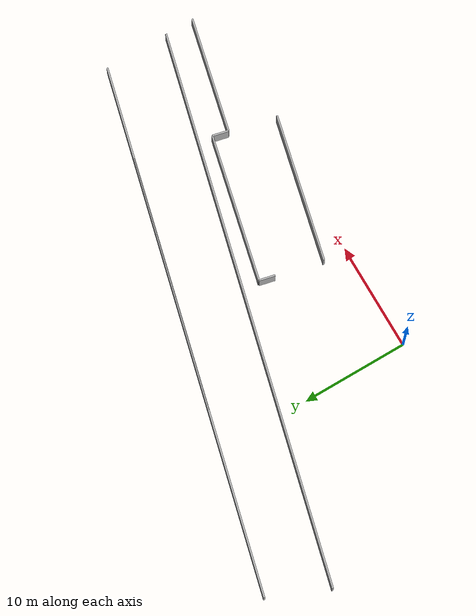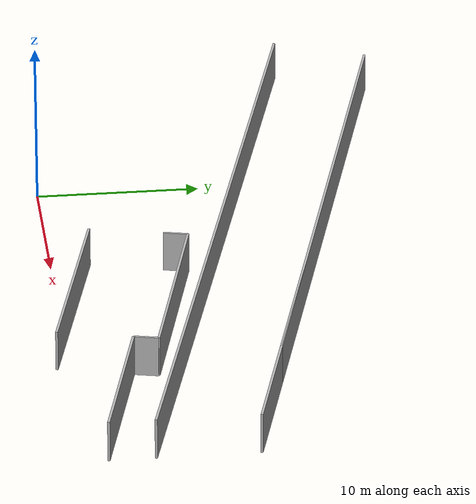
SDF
<?xml version="1.0" ?>
<sdf version="1.6">
  <model name="sps_1006">
    <pose frame="">0 0 0 0 -0 0</pose>
    <static>1</static>
    <self_collide>0</self_collide>
    <allow_auto_disable>0</allow_auto_disable>
    <link name="Wall104">
      <kinematic>0</kinematic>
      <gravity>1</gravity>
      <self_collide>0</self_collide>
      <collision name="collision">
        <geometry>
          <box>
            <size>51.5639 0.15 2.5</size>
          </box>
        </geometry>
        <pose frame="">0 0 0 0 -0 0</pose>
      </collision>
      <visual name="visual">
        <geometry>
          <box>
            <size>51.5639 0.15 2.5</size>
          </box>
        </geometry>
        <pose frame="">0 0 0 0 -0 0</pose>
        <cast_shadows>1</cast_shadows>
        <transparency>0.0</transparency>
      </visual>
      <pose frame="">9.46944 10.2681 1.25 0 0 -0.246916</pose>
    </link>
    <link name="Wall181">
      <kinematic>0</kinematic>
      <gravity>1</gravity>
      <self_collide>0</self_collide>
      <collision name="collision">
        <geometry>
          <box>
            <size>32.001 0.15 2.5</size>
          </box>
        </geometry>
        <pose frame="">0 0 0 0 -0 0</pose>
      </collision>
      <visual name="visual">
        <geometry>
          <box>
            <size>32.001 0.15 2.5</size>
          </box>
        </geometry>
        <pose frame="">0 0 0 0 -0 0</pose>
        <cast_shadows>1</cast_shadows>
        <transparency>0.0</transparency>
      </visual>
      <pose frame="">18.9592 13.9626 1.25 0 -0 2.89341</pose>
    </link>
    <link name="Wall275">
      <kinematic>0</kinematic>
      <gravity>1</gravity>
      <self_collide>0</self_collide>
      <collision name="collision">
        <geometry>
          <box>
            <size>1.49953 0.15 2.5</size>
          </box>
        </geometry>
        <pose frame="">0 0 0 0 -0 0</pose>
      </collision>
      <visual name="visual">
        <geometry>
          <box>
            <size>1.49953 0.15 2.5</size>
          </box>
        </geometry>
        <pose frame="">0 0 0 0 -0 0</pose>
        <cast_shadows>1</cast_shadows>
        <transparency>0.0</transparency>
      </visual>
      <pose frame="">24.2309 4.40401 1.25 0 -0 1.34234</pose>
    </link>
    <link name="Wall337">
      <kinematic>0</kinematic>
      <gravity>1</gravity>
      <self_collide>0</self_collide>
      <collision name="collision">
        <geometry>
          <box>
            <size>13.6502 0.15 2.5</size>
          </box>
        </geometry>
        <pose frame="">0 0 0 0 -0 0</pose>
      </collision>
      <visual name="visual">
        <geometry>
          <box>
            <size>13.6502 0.15 2.5</size>
          </box>
        </geometry>
        <pose frame="">0 0 0 0 -0 0</pose>
        <cast_shadows>1</cast_shadows>
        <transparency>0.0</transparency>
      </visual>
      <pose frame="">16.3896 0.810378 1.25 0 -0 2.91335</pose>
    </link>
    <link name="Wall342">
      <kinematic>0</kinematic>
      <gravity>1</gravity>
      <self_collide>0</self_collide>
      <collision name="collision">
        <geometry>
          <box>
            <size>10.6855 0.15 2.5</size>
          </box>
        </geometry>
        <pose frame="">0 0 0 0 -0 0</pose>
      </collision>
      <visual name="visual">
        <geometry>
          <box>
            <size>10.6855 0.15 2.5</size>
          </box>
        </geometry>
        <pose frame="">0 0 0 0 -0 0</pose>
        <cast_shadows>1</cast_shadows>
        <transparency>0.0</transparency>
      </visual>
      <pose frame="">29.2653 2.46477 1.25 0 -0 2.91334</pose>
    </link>
    <link name="Wall421">
      <kinematic>0</kinematic>
      <gravity>1</gravity>
      <self_collide>0</self_collide>
      <collision name="collision">
        <geometry>
          <box>
            <size>13.6503 0.15 2.5</size>
          </box>
        </geometry>
        <pose frame="">0 0 0 0 -0 0</pose>
      </collision>
      <visual name="visual">
        <geometry>
          <box>
            <size>13.6503 0.15 2.5</size>
          </box>
        </geometry>
        <pose frame="">0 0 0 0 -0 0</pose>
        <cast_shadows>1</cast_shadows>
        <transparency>0.0</transparency>
      </visual>
      <pose frame="">17.7526 6.67909 1.25 0 -0 2.91327</pose>
    </link>
    <link name="Wall596">
      <kinematic>0</kinematic>
      <gravity>1</gravity>
      <self_collide>0</self_collide>
      <collision name="collision">
        <geometry>
          <box>
            <size>1.5008 0.15 2.5</size>
          </box>
        </geometry>
        <pose frame="">0 0 0 0 -0 0</pose>
      </collision>
      <visual name="visual">
        <geometry>
          <box>
            <size>1.5008 0.15 2.5</size>
          </box>
        </geometry>
        <pose frame="">0 0 0 0 -0 0</pose>
        <cast_shadows>1</cast_shadows>
        <transparency>0.0</transparency>
      </visual>
      <pose frame="">10.9351 7.4929 1.25 0 0 -1.79876</pose>
    </link>
    <link name="Wall1390">
      <kinematic>0</kinematic>
      <gravity>1</gravity>
      <self_collide>0</self_collide>
      <collision name="collision">
        <geometry>
          <box>
            <size>40.6119 0.15 2.5</size>
          </box>
        </geometry>
        <pose frame="">0 0 0 0 -0 0</pose>
      </collision>
      <visual name="visual">
        <geometry>
          <box>
            <size>40.6119 0.15 2.5</size>
          </box>
        </geometry>
        <pose frame="">0 0 0 0 -0 0</pose>
        <cast_shadows>1</cast_shadows>
        <transparency>0.0</transparency>
      </visual>
      <pose frame="">6.51485 17.1161 1.25 0 0 -0.248183</pose>
    </link>
  </model>
</sdf>
